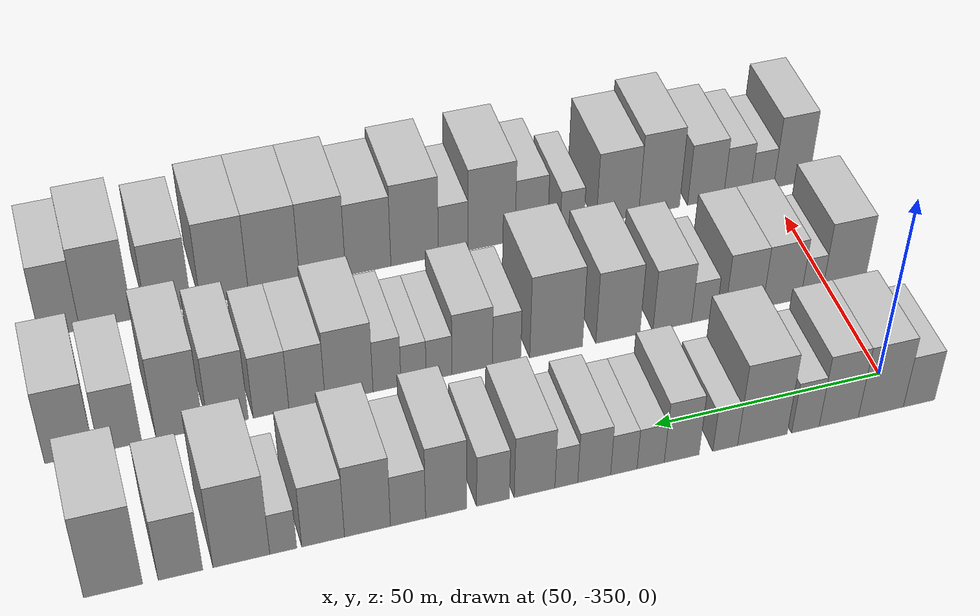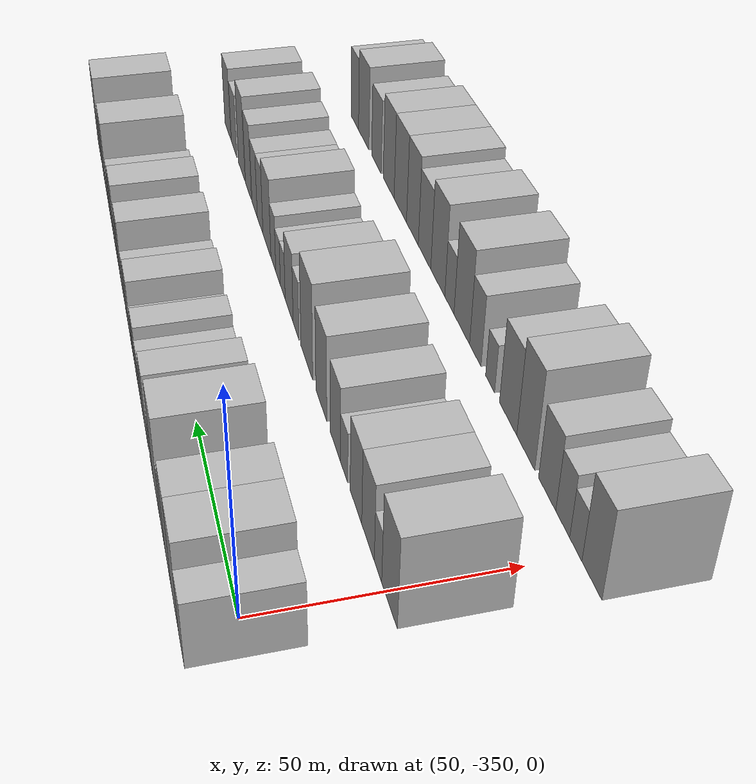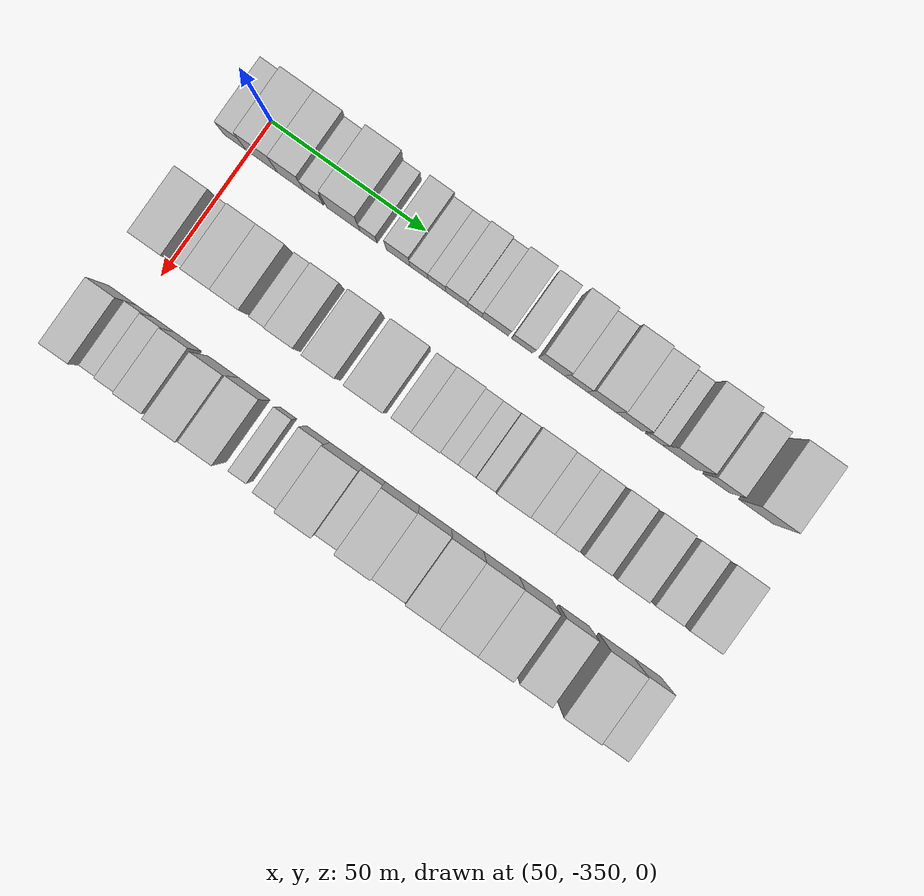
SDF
<sdf version="1.6">
 <world name="default">
  <model name="building_1">
   <static>1</static>
   <pose>50.0000 -354.4526 0 0.000000 0.000000 0.000000</pose>
   <link name="link">
    <pose>0 0 7.50 0 0 0</pose>
    <collision name="collision"><geometry><box><size>20.0000 7.0948 15.0000</size></box></geometry></collision>
    <visual name="visual">
     <cast_shadows>0</cast_shadows>
     <geometry><box><size>20.0000 7.0948 15.0000</size></box></geometry>
     <material>
      <script>
       <uri>model://HANNAS_wall/materials/scripts</uri>
       <uri>model://HANNAS_wall/materials/textures</uri>
       <name>vrc/HANNAS_wall</name>
      </script>
     </material>
    </visual>
   </link>
  </model>
  <model name="building_2">
   <static>1</static>
   <pose>50.0000 -345.8358 0 0.000000 0.000000 0.000000</pose>
   <link name="link">
    <pose>0 0 10.50 0 0 0</pose>
    <collision name="collision"><geometry><box><size>20.0000 10.1390 21.0000</size></box></geometry></collision>
    <visual name="visual">
     <cast_shadows>0</cast_shadows>
     <geometry><box><size>20.0000 10.1390 21.0000</size></box></geometry>
     <material>
      <script>
       <uri>model://HANNAS_wall/materials/scripts</uri>
       <uri>model://HANNAS_wall/materials/textures</uri>
       <name>vrc/HANNAS_wall</name>
      </script>
     </material>
    </visual>
   </link>
  </model>
  <model name="building_3">
   <static>1</static>
   <pose>50.0000 -336.3879 0 0.000000 0.000000 0.000000</pose>
   <link name="link">
    <pose>0 0 10.50 0 0 0</pose>
    <collision name="collision"><geometry><box><size>20.0000 8.7568 21.0000</size></box></geometry></collision>
    <visual name="visual">
     <cast_shadows>0</cast_shadows>
     <geometry><box><size>20.0000 8.7568 21.0000</size></box></geometry>
     <material>
      <script>
       <uri>model://HANNAS_wall/materials/scripts</uri>
       <uri>model://HANNAS_wall/materials/textures</uri>
       <name>vrc/HANNAS_wall</name>
      </script>
     </material>
    </visual>
   </link>
  </model>
  <model name="building_4">
   <static>1</static>
   <pose>50.0000 -328.9606 0 0.000000 0.000000 0.000000</pose>
   <link name="link">
    <pose>0 0 7.50 0 0 0</pose>
    <collision name="collision"><geometry><box><size>20.0000 6.0978 15.0000</size></box></geometry></collision>
    <visual name="visual">
     <cast_shadows>0</cast_shadows>
     <geometry><box><size>20.0000 6.0978 15.0000</size></box></geometry>
     <material>
      <script>
       <uri>model://HANNAS_wall/materials/scripts</uri>
       <uri>model://HANNAS_wall/materials/textures</uri>
       <name>vrc/HANNAS_wall</name>
      </script>
     </material>
    </visual>
   </link>
  </model>
  <model name="building_5">
   <static>1</static>
   <pose>50.0000 -319.4855 0 0.000000 0.000000 0.000000</pose>
   <link name="link">
    <pose>0 0 12.00 0 0 0</pose>
    <collision name="collision"><geometry><box><size>20.0000 10.8523 24.0000</size></box></geometry></collision>
    <visual name="visual">
     <cast_shadows>0</cast_shadows>
     <geometry><box><size>20.0000 10.8523 24.0000</size></box></geometry>
     <material>
      <script>
       <uri>model://HANNAS_wall/materials/scripts</uri>
       <uri>model://HANNAS_wall/materials/textures</uri>
       <name>vrc/HANNAS_wall</name>
      </script>
     </material>
    </visual>
   </link>
  </model>
  <model name="building_6">
   <static>1</static>
   <pose>50.0000 -311.3605 0 0.000000 0.000000 0.000000</pose>
   <link name="link">
    <pose>0 0 6.00 0 0 0</pose>
    <collision name="collision"><geometry><box><size>20.0000 5.3977 12.0000</size></box></geometry></collision>
    <visual name="visual">
     <cast_shadows>0</cast_shadows>
     <geometry><box><size>20.0000 5.3977 12.0000</size></box></geometry>
     <material>
      <script>
       <uri>model://HANNAS_wall/materials/scripts</uri>
       <uri>model://HANNAS_wall/materials/textures</uri>
       <name>vrc/HANNAS_wall</name>
      </script>
     </material>
    </visual>
   </link>
  </model>
  <model name="building_7">
   <static>1</static>
   <pose>50.0000 -301.9063 0 0.000000 0.000000 0.000000</pose>
   <link name="link">
    <pose>0 0 9.00 0 0 0</pose>
    <collision name="collision"><geometry><box><size>20.0000 7.5106 18.0000</size></box></geometry></collision>
    <visual name="visual">
     <cast_shadows>0</cast_shadows>
     <geometry><box><size>20.0000 7.5106 18.0000</size></box></geometry>
     <material>
      <script>
       <uri>model://HANNAS_wall/materials/scripts</uri>
       <uri>model://HANNAS_wall/materials/textures</uri>
       <name>vrc/HANNAS_wall</name>
      </script>
     </material>
    </visual>
   </link>
  </model>
  <model name="building_8">
   <static>1</static>
   <pose>50.0000 -295.2323 0 0.000000 0.000000 0.000000</pose>
   <link name="link">
    <pose>0 0 6.00 0 0 0</pose>
    <collision name="collision"><geometry><box><size>20.0000 5.8375 12.0000</size></box></geometry></collision>
    <visual name="visual">
     <cast_shadows>0</cast_shadows>
     <geometry><box><size>20.0000 5.8375 12.0000</size></box></geometry>
     <material>
      <script>
       <uri>model://HANNAS_wall/materials/scripts</uri>
       <uri>model://HANNAS_wall/materials/textures</uri>
       <name>vrc/HANNAS_wall</name>
      </script>
     </material>
    </visual>
   </link>
  </model>
  <model name="building_9">
   <static>1</static>
   <pose>50.0000 -289.4980 0 0.000000 0.000000 0.000000</pose>
   <link name="link">
    <pose>0 0 6.00 0 0 0</pose>
    <collision name="collision"><geometry><box><size>20.0000 5.6311 12.0000</size></box></geometry></collision>
    <visual name="visual">
     <cast_shadows>0</cast_shadows>
     <geometry><box><size>20.0000 5.6311 12.0000</size></box></geometry>
     <material>
      <script>
       <uri>model://HANNAS_wall/materials/scripts</uri>
       <uri>model://HANNAS_wall/materials/textures</uri>
       <name>vrc/HANNAS_wall</name>
      </script>
     </material>
    </visual>
   </link>
  </model>
  <model name="building_10">
   <static>1</static>
   <pose>50.0000 -283.2031 0 0.000000 0.000000 0.000000</pose>
   <link name="link">
    <pose>0 0 7.50 0 0 0</pose>
    <collision name="collision"><geometry><box><size>20.0000 6.9587 15.0000</size></box></geometry></collision>
    <visual name="visual">
     <cast_shadows>0</cast_shadows>
     <geometry><box><size>20.0000 6.9587 15.0000</size></box></geometry>
     <material>
      <script>
       <uri>model://HANNAS_wall/materials/scripts</uri>
       <uri>model://HANNAS_wall/materials/textures</uri>
       <name>vrc/HANNAS_wall</name>
      </script>
     </material>
    </visual>
   </link>
  </model>
  <model name="building_11">
   <static>1</static>
   <pose>50.0000 -277.3180 0 0.000000 0.000000 0.000000</pose>
   <link name="link">
    <pose>0 0 6.00 0 0 0</pose>
    <collision name="collision"><geometry><box><size>20.0000 4.8116 12.0000</size></box></geometry></collision>
    <visual name="visual">
     <cast_shadows>0</cast_shadows>
     <geometry><box><size>20.0000 4.8116 12.0000</size></box></geometry>
     <material>
      <script>
       <uri>model://HANNAS_wall/materials/scripts</uri>
       <uri>model://HANNAS_wall/materials/textures</uri>
       <name>vrc/HANNAS_wall</name>
      </script>
     </material>
    </visual>
   </link>
  </model>
  <model name="building_12">
   <static>1</static>
   <pose>50.0000 -270.6634 0 0.000000 0.000000 0.000000</pose>
   <link name="link">
    <pose>0 0 9.00 0 0 0</pose>
    <collision name="collision"><geometry><box><size>20.0000 8.4977 18.0000</size></box></geometry></collision>
    <visual name="visual">
     <cast_shadows>0</cast_shadows>
     <geometry><box><size>20.0000 8.4977 18.0000</size></box></geometry>
     <material>
      <script>
       <uri>model://HANNAS_wall/materials/scripts</uri>
       <uri>model://HANNAS_wall/materials/textures</uri>
       <name>vrc/HANNAS_wall</name>
      </script>
     </material>
    </visual>
   </link>
  </model>
  <model name="building_13">
   <static>1</static>
   <pose>50.0000 -262.0144 0 0.000000 0.000000 0.000000</pose>
   <link name="link">
    <pose>0 0 7.50 0 0 0</pose>
    <collision name="collision"><geometry><box><size>20.0000 6.8003 15.0000</size></box></geometry></collision>
    <visual name="visual">
     <cast_shadows>0</cast_shadows>
     <geometry><box><size>20.0000 6.8003 15.0000</size></box></geometry>
     <material>
      <script>
       <uri>model://HANNAS_wall/materials/scripts</uri>
       <uri>model://HANNAS_wall/materials/textures</uri>
       <name>vrc/HANNAS_wall</name>
      </script>
     </material>
    </visual>
   </link>
  </model>
  <model name="building_14">
   <static>1</static>
   <pose>50.0000 -252.3882 0 0.000000 0.000000 0.000000</pose>
   <link name="link">
    <pose>0 0 10.50 0 0 0</pose>
    <collision name="collision"><geometry><box><size>20.0000 8.4520 21.0000</size></box></geometry></collision>
    <visual name="visual">
     <cast_shadows>0</cast_shadows>
     <geometry><box><size>20.0000 8.4520 21.0000</size></box></geometry>
     <material>
      <script>
       <uri>model://HANNAS_wall/materials/scripts</uri>
       <uri>model://HANNAS_wall/materials/textures</uri>
       <name>vrc/HANNAS_wall</name>
      </script>
     </material>
    </visual>
   </link>
  </model>
  <model name="building_15">
   <static>1</static>
   <pose>50.0000 -244.5820 0 0.000000 0.000000 0.000000</pose>
   <link name="link">
    <pose>0 0 7.50 0 0 0</pose>
    <collision name="collision"><geometry><box><size>20.0000 7.1606 15.0000</size></box></geometry></collision>
    <visual name="visual">
     <cast_shadows>0</cast_shadows>
     <geometry><box><size>20.0000 7.1606 15.0000</size></box></geometry>
     <material>
      <script>
       <uri>model://HANNAS_wall/materials/scripts</uri>
       <uri>model://HANNAS_wall/materials/textures</uri>
       <name>vrc/HANNAS_wall</name>
      </script>
     </material>
    </visual>
   </link>
  </model>
  <model name="building_16">
   <static>1</static>
   <pose>50.0000 -236.3634 0 0.000000 0.000000 0.000000</pose>
   <link name="link">
    <pose>0 0 10.50 0 0 0</pose>
    <collision name="collision"><geometry><box><size>20.0000 9.2764 21.0000</size></box></geometry></collision>
    <visual name="visual">
     <cast_shadows>0</cast_shadows>
     <geometry><box><size>20.0000 9.2764 21.0000</size></box></geometry>
     <material>
      <script>
       <uri>model://HANNAS_wall/materials/scripts</uri>
       <uri>model://HANNAS_wall/materials/textures</uri>
       <name>vrc/HANNAS_wall</name>
      </script>
     </material>
    </visual>
   </link>
  </model>
  <model name="building_17">
   <static>1</static>
   <pose>50.0000 -227.4491 0 0.000000 0.000000 0.000000</pose>
   <link name="link">
    <pose>0 0 9.00 0 0 0</pose>
    <collision name="collision"><geometry><box><size>20.0000 8.5524 18.0000</size></box></geometry></collision>
    <visual name="visual">
     <cast_shadows>0</cast_shadows>
     <geometry><box><size>20.0000 8.5524 18.0000</size></box></geometry>
     <material>
      <script>
       <uri>model://HANNAS_wall/materials/scripts</uri>
       <uri>model://HANNAS_wall/materials/textures</uri>
       <name>vrc/HANNAS_wall</name>
      </script>
     </material>
    </visual>
   </link>
  </model>
  <model name="building_18">
   <static>1</static>
   <pose>50.0000 -219.5066 0 0.000000 0.000000 0.000000</pose>
   <link name="link">
    <pose>0 0 6.00 0 0 0</pose>
    <collision name="collision"><geometry><box><size>20.0000 5.3324 12.0000</size></box></geometry></collision>
    <visual name="visual">
     <cast_shadows>0</cast_shadows>
     <geometry><box><size>20.0000 5.3324 12.0000</size></box></geometry>
     <material>
      <script>
       <uri>model://HANNAS_wall/materials/scripts</uri>
       <uri>model://HANNAS_wall/materials/textures</uri>
       <name>vrc/HANNAS_wall</name>
      </script>
     </material>
    </visual>
   </link>
  </model>
  <model name="building_19">
   <static>1</static>
   <pose>50.0000 -211.2568 0 0.000000 0.000000 0.000000</pose>
   <link name="link">
    <pose>0 0 12.00 0 0 0</pose>
    <collision name="collision"><geometry><box><size>20.0000 11.1674 24.0000</size></box></geometry></collision>
    <visual name="visual">
     <cast_shadows>0</cast_shadows>
     <geometry><box><size>20.0000 11.1674 24.0000</size></box></geometry>
     <material>
      <script>
       <uri>model://HANNAS_wall/materials/scripts</uri>
       <uri>model://HANNAS_wall/materials/textures</uri>
       <name>vrc/HANNAS_wall</name>
      </script>
     </material>
    </visual>
   </link>
  </model>
  <model name="building_20">
   <static>1</static>
   <pose>50.0000 -199.3447 0 0.000000 0.000000 0.000000</pose>
   <link name="link">
    <pose>0 0 9.00 0 0 0</pose>
    <collision name="collision"><geometry><box><size>20.0000 8.6568 18.0000</size></box></geometry></collision>
    <visual name="visual">
     <cast_shadows>0</cast_shadows>
     <geometry><box><size>20.0000 8.6568 18.0000</size></box></geometry>
     <material>
      <script>
       <uri>model://HANNAS_wall/materials/scripts</uri>
       <uri>model://HANNAS_wall/materials/textures</uri>
       <name>vrc/HANNAS_wall</name>
      </script>
     </material>
    </visual>
   </link>
  </model>
  <model name="building_21">
   <static>1</static>
   <pose>50.0000 -186.3479 0 0.000000 0.000000 0.000000</pose>
   <link name="link">
    <pose>0 0 12.00 0 0 0</pose>
    <collision name="collision"><geometry><box><size>20.0000 11.3366 24.0000</size></box></geometry></collision>
    <visual name="visual">
     <cast_shadows>0</cast_shadows>
     <geometry><box><size>20.0000 11.3366 24.0000</size></box></geometry>
     <material>
      <script>
       <uri>model://HANNAS_wall/materials/scripts</uri>
       <uri>model://HANNAS_wall/materials/textures</uri>
       <name>vrc/HANNAS_wall</name>
      </script>
     </material>
    </visual>
   </link>
  </model>
  <model name="building_84">
   <static>1</static>
   <pose>85.0000 -352.9696 0 0.000000 0.000000 0.000000</pose>
   <link name="link">
    <pose>0 0 10.50 0 0 0</pose>
    <collision name="collision"><geometry><box><size>20.0000 10.0607 21.0000</size></box></geometry></collision>
    <visual name="visual">
     <cast_shadows>0</cast_shadows>
     <geometry><box><size>20.0000 10.0607 21.0000</size></box></geometry>
     <material>
      <script>
       <uri>model://HANNAS_wall/materials/scripts</uri>
       <uri>model://HANNAS_wall/materials/textures</uri>
       <name>vrc/HANNAS_wall</name>
      </script>
     </material>
    </visual>
   </link>
  </model>
  <model name="building_85">
   <static>1</static>
   <pose>85.0000 -345.4326 0 0.000000 0.000000 0.000000</pose>
   <link name="link">
    <pose>0 0 6.00 0 0 0</pose>
    <collision name="collision"><geometry><box><size>20.0000 5.0135 12.0000</size></box></geometry></collision>
    <visual name="visual">
     <cast_shadows>0</cast_shadows>
     <geometry><box><size>20.0000 5.0135 12.0000</size></box></geometry>
     <material>
      <script>
       <uri>model://HANNAS_wall/materials/scripts</uri>
       <uri>model://HANNAS_wall/materials/textures</uri>
       <name>vrc/HANNAS_wall</name>
      </script>
     </material>
    </visual>
   </link>
  </model>
  <model name="building_86">
   <static>1</static>
   <pose>85.0000 -338.4584 0 0.000000 0.000000 0.000000</pose>
   <link name="link">
    <pose>0 0 9.00 0 0 0</pose>
    <collision name="collision"><geometry><box><size>20.0000 8.9349 18.0000</size></box></geometry></collision>
    <visual name="visual">
     <cast_shadows>0</cast_shadows>
     <geometry><box><size>20.0000 8.9349 18.0000</size></box></geometry>
     <material>
      <script>
       <uri>model://HANNAS_wall/materials/scripts</uri>
       <uri>model://HANNAS_wall/materials/textures</uri>
       <name>vrc/HANNAS_wall</name>
      </script>
     </material>
    </visual>
   </link>
  </model>
  <model name="building_87">
   <static>1</static>
   <pose>85.0000 -329.5762 0 0.000000 0.000000 0.000000</pose>
   <link name="link">
    <pose>0 0 9.00 0 0 0</pose>
    <collision name="collision"><geometry><box><size>20.0000 8.8293 18.0000</size></box></geometry></collision>
    <visual name="visual">
     <cast_shadows>0</cast_shadows>
     <geometry><box><size>20.0000 8.8293 18.0000</size></box></geometry>
     <material>
      <script>
       <uri>model://HANNAS_wall/materials/scripts</uri>
       <uri>model://HANNAS_wall/materials/textures</uri>
       <name>vrc/HANNAS_wall</name>
      </script>
     </material>
    </visual>
   </link>
  </model>
  <model name="building_88">
   <static>1</static>
   <pose>85.0000 -320.2946 0 0.000000 0.000000 0.000000</pose>
   <link name="link">
    <pose>0 0 6.00 0 0 0</pose>
    <collision name="collision"><geometry><box><size>20.0000 5.7340 12.0000</size></box></geometry></collision>
    <visual name="visual">
     <cast_shadows>0</cast_shadows>
     <geometry><box><size>20.0000 5.7340 12.0000</size></box></geometry>
     <material>
      <script>
       <uri>model://HANNAS_wall/materials/scripts</uri>
       <uri>model://HANNAS_wall/materials/textures</uri>
       <name>vrc/HANNAS_wall</name>
      </script>
     </material>
    </visual>
   </link>
  </model>
  <model name="building_89">
   <static>1</static>
   <pose>85.0000 -313.0156 0 0.000000 0.000000 0.000000</pose>
   <link name="link">
    <pose>0 0 9.00 0 0 0</pose>
    <collision name="collision"><geometry><box><size>20.0000 8.8241 18.0000</size></box></geometry></collision>
    <visual name="visual">
     <cast_shadows>0</cast_shadows>
     <geometry><box><size>20.0000 8.8241 18.0000</size></box></geometry>
     <material>
      <script>
       <uri>model://HANNAS_wall/materials/scripts</uri>
       <uri>model://HANNAS_wall/materials/textures</uri>
       <name>vrc/HANNAS_wall</name>
      </script>
     </material>
    </visual>
   </link>
  </model>
  <model name="building_90">
   <static>1</static>
   <pose>85.0000 -300.6014 0 0.000000 0.000000 0.000000</pose>
   <link name="link">
    <pose>0 0 10.50 0 0 0</pose>
    <collision name="collision"><geometry><box><size>20.0000 10.0043 21.0000</size></box></geometry></collision>
    <visual name="visual">
     <cast_shadows>0</cast_shadows>
     <geometry><box><size>20.0000 10.0043 21.0000</size></box></geometry>
     <material>
      <script>
       <uri>model://HANNAS_wall/materials/scripts</uri>
       <uri>model://HANNAS_wall/materials/textures</uri>
       <name>vrc/HANNAS_wall</name>
      </script>
     </material>
    </visual>
   </link>
  </model>
  <model name="building_91">
   <static>1</static>
   <pose>85.0000 -286.6879 0 0.000000 0.000000 0.000000</pose>
   <link name="link">
    <pose>0 0 12.00 0 0 0</pose>
    <collision name="collision"><geometry><box><size>20.0000 11.8227 24.0000</size></box></geometry></collision>
    <visual name="visual">
     <cast_shadows>0</cast_shadows>
     <geometry><box><size>20.0000 11.8227 24.0000</size></box></geometry>
     <material>
      <script>
       <uri>model://HANNAS_wall/materials/scripts</uri>
       <uri>model://HANNAS_wall/materials/textures</uri>
       <name>vrc/HANNAS_wall</name>
      </script>
     </material>
    </visual>
   </link>
  </model>
  <model name="building_92">
   <static>1</static>
   <pose>85.0000 -275.6431 0 0.000000 0.000000 0.000000</pose>
   <link name="link">
    <pose>0 0 7.50 0 0 0</pose>
    <collision name="collision"><geometry><box><size>20.0000 6.2668 15.0000</size></box></geometry></collision>
    <visual name="visual">
     <cast_shadows>0</cast_shadows>
     <geometry><box><size>20.0000 6.2668 15.0000</size></box></geometry>
     <material>
      <script>
       <uri>model://HANNAS_wall/materials/scripts</uri>
       <uri>model://HANNAS_wall/materials/textures</uri>
       <name>vrc/HANNAS_wall</name>
      </script>
     </material>
    </visual>
   </link>
  </model>
  <model name="building_93">
   <static>1</static>
   <pose>85.0000 -268.0560 0 0.000000 0.000000 0.000000</pose>
   <link name="link">
    <pose>0 0 9.00 0 0 0</pose>
    <collision name="collision"><geometry><box><size>20.0000 8.9075 18.0000</size></box></geometry></collision>
    <visual name="visual">
     <cast_shadows>0</cast_shadows>
     <geometry><box><size>20.0000 8.9075 18.0000</size></box></geometry>
     <material>
      <script>
       <uri>model://HANNAS_wall/materials/scripts</uri>
       <uri>model://HANNAS_wall/materials/textures</uri>
       <name>vrc/HANNAS_wall</name>
      </script>
     </material>
    </visual>
   </link>
  </model>
  <model name="building_94">
   <static>1</static>
   <pose>85.0000 -260.8009 0 0.000000 0.000000 0.000000</pose>
   <link name="link">
    <pose>0 0 6.00 0 0 0</pose>
    <collision name="collision"><geometry><box><size>20.0000 5.6026 12.0000</size></box></geometry></collision>
    <visual name="visual">
     <cast_shadows>0</cast_shadows>
     <geometry><box><size>20.0000 5.6026 12.0000</size></box></geometry>
     <material>
      <script>
       <uri>model://HANNAS_wall/materials/scripts</uri>
       <uri>model://HANNAS_wall/materials/textures</uri>
       <name>vrc/HANNAS_wall</name>
      </script>
     </material>
    </visual>
   </link>
  </model>
  <model name="building_95">
   <static>1</static>
   <pose>85.0000 -255.2570 0 0.000000 0.000000 0.000000</pose>
   <link name="link">
    <pose>0 0 6.00 0 0 0</pose>
    <collision name="collision"><geometry><box><size>20.0000 5.4851 12.0000</size></box></geometry></collision>
    <visual name="visual">
     <cast_shadows>0</cast_shadows>
     <geometry><box><size>20.0000 5.4851 12.0000</size></box></geometry>
     <material>
      <script>
       <uri>model://HANNAS_wall/materials/scripts</uri>
       <uri>model://HANNAS_wall/materials/textures</uri>
       <name>vrc/HANNAS_wall</name>
      </script>
     </material>
    </visual>
   </link>
  </model>
  <model name="building_96">
   <static>1</static>
   <pose>85.0000 -249.4998 0 0.000000 0.000000 0.000000</pose>
   <link name="link">
    <pose>0 0 7.50 0 0 0</pose>
    <collision name="collision"><geometry><box><size>20.0000 6.0294 15.0000</size></box></geometry></collision>
    <visual name="visual">
     <cast_shadows>0</cast_shadows>
     <geometry><box><size>20.0000 6.0294 15.0000</size></box></geometry>
     <material>
      <script>
       <uri>model://HANNAS_wall/materials/scripts</uri>
       <uri>model://HANNAS_wall/materials/textures</uri>
       <name>vrc/HANNAS_wall</name>
      </script>
     </material>
    </visual>
   </link>
  </model>
  <model name="building_97">
   <static>1</static>
   <pose>85.0000 -241.3582 0 0.000000 0.000000 0.000000</pose>
   <link name="link">
    <pose>0 0 10.50 0 0 0</pose>
    <collision name="collision"><geometry><box><size>20.0000 10.2538 21.0000</size></box></geometry></collision>
    <visual name="visual">
     <cast_shadows>0</cast_shadows>
     <geometry><box><size>20.0000 10.2538 21.0000</size></box></geometry>
     <material>
      <script>
       <uri>model://HANNAS_wall/materials/scripts</uri>
       <uri>model://HANNAS_wall/materials/textures</uri>
       <name>vrc/HANNAS_wall</name>
      </script>
     </material>
    </visual>
   </link>
  </model>
  <model name="building_98">
   <static>1</static>
   <pose>85.0000 -232.3829 0 0.000000 0.000000 0.000000</pose>
   <link name="link">
    <pose>0 0 9.00 0 0 0</pose>
    <collision name="collision"><geometry><box><size>20.0000 7.6968 18.0000</size></box></geometry></collision>
    <visual name="visual">
     <cast_shadows>0</cast_shadows>
     <geometry><box><size>20.0000 7.6968 18.0000</size></box></geometry>
     <material>
      <script>
       <uri>model://HANNAS_wall/materials/scripts</uri>
       <uri>model://HANNAS_wall/materials/textures</uri>
       <name>vrc/HANNAS_wall</name>
      </script>
     </material>
    </visual>
   </link>
  </model>
  <model name="building_99">
   <static>1</static>
   <pose>85.0000 -224.7558 0 0.000000 0.000000 0.000000</pose>
   <link name="link">
    <pose>0 0 9.00 0 0 0</pose>
    <collision name="collision"><geometry><box><size>20.0000 7.5574 18.0000</size></box></geometry></collision>
    <visual name="visual">
     <cast_shadows>0</cast_shadows>
     <geometry><box><size>20.0000 7.5574 18.0000</size></box></geometry>
     <material>
      <script>
       <uri>model://HANNAS_wall/materials/scripts</uri>
       <uri>model://HANNAS_wall/materials/textures</uri>
       <name>vrc/HANNAS_wall</name>
      </script>
     </material>
    </visual>
   </link>
  </model>
  <model name="building_100">
   <static>1</static>
   <pose>85.0000 -215.7596 0 0.000000 0.000000 0.000000</pose>
   <link name="link">
    <pose>0 0 10.50 0 0 0</pose>
    <collision name="collision"><geometry><box><size>20.0000 8.4350 21.0000</size></box></geometry></collision>
    <visual name="visual">
     <cast_shadows>0</cast_shadows>
     <geometry><box><size>20.0000 8.4350 21.0000</size></box></geometry>
     <material>
      <script>
       <uri>model://HANNAS_wall/materials/scripts</uri>
       <uri>model://HANNAS_wall/materials/textures</uri>
       <name>vrc/HANNAS_wall</name>
      </script>
     </material>
    </visual>
   </link>
  </model>
  <model name="building_101">
   <static>1</static>
   <pose>85.0000 -205.6873 0 0.000000 0.000000 0.000000</pose>
   <link name="link">
    <pose>0 0 12.00 0 0 0</pose>
    <collision name="collision"><geometry><box><size>20.0000 9.7097 24.0000</size></box></geometry></collision>
    <visual name="visual">
     <cast_shadows>0</cast_shadows>
     <geometry><box><size>20.0000 9.7097 24.0000</size></box></geometry>
     <material>
      <script>
       <uri>model://HANNAS_wall/materials/scripts</uri>
       <uri>model://HANNAS_wall/materials/textures</uri>
       <name>vrc/HANNAS_wall</name>
      </script>
     </material>
    </visual>
   </link>
  </model>
  <model name="building_102">
   <static>1</static>
   <pose>85.0000 -193.4419 0 0.000000 0.000000 0.000000</pose>
   <link name="link">
    <pose>0 0 9.00 0 0 0</pose>
    <collision name="collision"><geometry><box><size>20.0000 8.7809 18.0000</size></box></geometry></collision>
    <visual name="visual">
     <cast_shadows>0</cast_shadows>
     <geometry><box><size>20.0000 8.7809 18.0000</size></box></geometry>
     <material>
      <script>
       <uri>model://HANNAS_wall/materials/scripts</uri>
       <uri>model://HANNAS_wall/materials/textures</uri>
       <name>vrc/HANNAS_wall</name>
      </script>
     </material>
    </visual>
   </link>
  </model>
  <model name="building_103">
   <static>1</static>
   <pose>85.0000 -183.0638 0 0.000000 0.000000 0.000000</pose>
   <link name="link">
    <pose>0 0 10.50 0 0 0</pose>
    <collision name="collision"><geometry><box><size>20.0000 9.9754 21.0000</size></box></geometry></collision>
    <visual name="visual">
     <cast_shadows>0</cast_shadows>
     <geometry><box><size>20.0000 9.9754 21.0000</size></box></geometry>
     <material>
      <script>
       <uri>model://HANNAS_wall/materials/scripts</uri>
       <uri>model://HANNAS_wall/materials/textures</uri>
       <name>vrc/HANNAS_wall</name>
      </script>
     </material>
    </visual>
   </link>
  </model>
  <model name="building_161">
   <static>1</static>
   <pose>120.0000 -355.5740 0 0.000000 0.000000 0.000000</pose>
   <link name="link">
    <pose>0 0 10.50 0 0 0</pose>
    <collision name="collision"><geometry><box><size>20.0000 8.8520 21.0000</size></box></geometry></collision>
    <visual name="visual">
     <cast_shadows>0</cast_shadows>
     <geometry><box><size>20.0000 8.8520 21.0000</size></box></geometry>
     <material>
      <script>
       <uri>model://HANNAS_wall/materials/scripts</uri>
       <uri>model://HANNAS_wall/materials/textures</uri>
       <name>vrc/HANNAS_wall</name>
      </script>
     </material>
    </visual>
   </link>
  </model>
  <model name="building_162">
   <static>1</static>
   <pose>120.0000 -348.3107 0 0.000000 0.000000 0.000000</pose>
   <link name="link">
    <pose>0 0 6.00 0 0 0</pose>
    <collision name="collision"><geometry><box><size>20.0000 5.6745 12.0000</size></box></geometry></collision>
    <visual name="visual">
     <cast_shadows>0</cast_shadows>
     <geometry><box><size>20.0000 5.6745 12.0000</size></box></geometry>
     <material>
      <script>
       <uri>model://HANNAS_wall/materials/scripts</uri>
       <uri>model://HANNAS_wall/materials/textures</uri>
       <name>vrc/HANNAS_wall</name>
      </script>
     </material>
    </visual>
   </link>
  </model>
  <model name="building_163">
   <static>1</static>
   <pose>120.0000 -342.1021 0 0.000000 0.000000 0.000000</pose>
   <link name="link">
    <pose>0 0 7.50 0 0 0</pose>
    <collision name="collision"><geometry><box><size>20.0000 6.7426 15.0000</size></box></geometry></collision>
    <visual name="visual">
     <cast_shadows>0</cast_shadows>
     <geometry><box><size>20.0000 6.7426 15.0000</size></box></geometry>
     <material>
      <script>
       <uri>model://HANNAS_wall/materials/scripts</uri>
       <uri>model://HANNAS_wall/materials/textures</uri>
       <name>vrc/HANNAS_wall</name>
      </script>
     </material>
    </visual>
   </link>
  </model>
  <model name="building_164">
   <static>1</static>
   <pose>120.0000 -334.3185 0 0.000000 0.000000 0.000000</pose>
   <link name="link">
    <pose>0 0 9.00 0 0 0</pose>
    <collision name="collision"><geometry><box><size>20.0000 8.8245 18.0000</size></box></geometry></collision>
    <visual name="visual">
     <cast_shadows>0</cast_shadows>
     <geometry><box><size>20.0000 8.8245 18.0000</size></box></geometry>
     <material>
      <script>
       <uri>model://HANNAS_wall/materials/scripts</uri>
       <uri>model://HANNAS_wall/materials/textures</uri>
       <name>vrc/HANNAS_wall</name>
      </script>
     </material>
    </visual>
   </link>
  </model>
  <model name="building_165">
   <static>1</static>
   <pose>120.0000 -322.9390 0 0.000000 0.000000 0.000000</pose>
   <link name="link">
    <pose>0 0 12.00 0 0 0</pose>
    <collision name="collision"><geometry><box><size>20.0000 9.9346 24.0000</size></box></geometry></collision>
    <visual name="visual">
     <cast_shadows>0</cast_shadows>
     <geometry><box><size>20.0000 9.9346 24.0000</size></box></geometry>
     <material>
      <script>
       <uri>model://HANNAS_wall/materials/scripts</uri>
       <uri>model://HANNAS_wall/materials/textures</uri>
       <name>vrc/HANNAS_wall</name>
      </script>
     </material>
    </visual>
   </link>
  </model>
  <model name="building_166">
   <static>1</static>
   <pose>120.0000 -312.8669 0 0.000000 0.000000 0.000000</pose>
   <link name="link">
    <pose>0 0 10.50 0 0 0</pose>
    <collision name="collision"><geometry><box><size>20.0000 10.2096 21.0000</size></box></geometry></collision>
    <visual name="visual">
     <cast_shadows>0</cast_shadows>
     <geometry><box><size>20.0000 10.2096 21.0000</size></box></geometry>
     <material>
      <script>
       <uri>model://HANNAS_wall/materials/scripts</uri>
       <uri>model://HANNAS_wall/materials/textures</uri>
       <name>vrc/HANNAS_wall</name>
      </script>
     </material>
    </visual>
   </link>
  </model>
  <model name="building_167">
   <static>1</static>
   <pose>120.0000 -301.9362 0 0.000000 0.000000 0.000000</pose>
   <link name="link">
    <pose>0 0 6.00 0 0 0</pose>
    <collision name="collision"><geometry><box><size>20.0000 5.6518 12.0000</size></box></geometry></collision>
    <visual name="visual">
     <cast_shadows>0</cast_shadows>
     <geometry><box><size>20.0000 5.6518 12.0000</size></box></geometry>
     <material>
      <script>
       <uri>model://HANNAS_wall/materials/scripts</uri>
       <uri>model://HANNAS_wall/materials/textures</uri>
       <name>vrc/HANNAS_wall</name>
      </script>
     </material>
    </visual>
   </link>
  </model>
  <model name="building_168">
   <static>1</static>
   <pose>120.0000 -292.2878 0 0.000000 0.000000 0.000000</pose>
   <link name="link">
    <pose>0 0 9.00 0 0 0</pose>
    <collision name="collision"><geometry><box><size>20.0000 7.6451 18.0000</size></box></geometry></collision>
    <visual name="visual">
     <cast_shadows>0</cast_shadows>
     <geometry><box><size>20.0000 7.6451 18.0000</size></box></geometry>
     <material>
      <script>
       <uri>model://HANNAS_wall/materials/scripts</uri>
       <uri>model://HANNAS_wall/materials/textures</uri>
       <name>vrc/HANNAS_wall</name>
      </script>
     </material>
    </visual>
   </link>
  </model>
  <model name="building_169">
   <static>1</static>
   <pose>120.0000 -282.9380 0 0.000000 0.000000 0.000000</pose>
   <link name="link">
    <pose>0 0 12.00 0 0 0</pose>
    <collision name="collision"><geometry><box><size>20.0000 11.0545 24.0000</size></box></geometry></collision>
    <visual name="visual">
     <cast_shadows>0</cast_shadows>
     <geometry><box><size>20.0000 11.0545 24.0000</size></box></geometry>
     <material>
      <script>
       <uri>model://HANNAS_wall/materials/scripts</uri>
       <uri>model://HANNAS_wall/materials/textures</uri>
       <name>vrc/HANNAS_wall</name>
      </script>
     </material>
    </visual>
   </link>
  </model>
  <model name="building_170">
   <static>1</static>
   <pose>120.0000 -273.9911 0 0.000000 0.000000 0.000000</pose>
   <link name="link">
    <pose>0 0 7.50 0 0 0</pose>
    <collision name="collision"><geometry><box><size>20.0000 6.8393 15.0000</size></box></geometry></collision>
    <visual name="visual">
     <cast_shadows>0</cast_shadows>
     <geometry><box><size>20.0000 6.8393 15.0000</size></box></geometry>
     <material>
      <script>
       <uri>model://HANNAS_wall/materials/scripts</uri>
       <uri>model://HANNAS_wall/materials/textures</uri>
       <name>vrc/HANNAS_wall</name>
      </script>
     </material>
    </visual>
   </link>
  </model>
  <model name="building_171">
   <static>1</static>
   <pose>120.0000 -265.0798 0 0.000000 0.000000 0.000000</pose>
   <link name="link">
    <pose>0 0 12.00 0 0 0</pose>
    <collision name="collision"><geometry><box><size>20.0000 10.9833 24.0000</size></box></geometry></collision>
    <visual name="visual">
     <cast_shadows>0</cast_shadows>
     <geometry><box><size>20.0000 10.9833 24.0000</size></box></geometry>
     <material>
      <script>
       <uri>model://HANNAS_wall/materials/scripts</uri>
       <uri>model://HANNAS_wall/materials/textures</uri>
       <name>vrc/HANNAS_wall</name>
      </script>
     </material>
    </visual>
   </link>
  </model>
  <model name="building_172">
   <static>1</static>
   <pose>120.0000 -254.4104 0 0.000000 0.000000 0.000000</pose>
   <link name="link">
    <pose>0 0 10.50 0 0 0</pose>
    <collision name="collision"><geometry><box><size>20.0000 10.3554 21.0000</size></box></geometry></collision>
    <visual name="visual">
     <cast_shadows>0</cast_shadows>
     <geometry><box><size>20.0000 10.3554 21.0000</size></box></geometry>
     <material>
      <script>
       <uri>model://HANNAS_wall/materials/scripts</uri>
       <uri>model://HANNAS_wall/materials/textures</uri>
       <name>vrc/HANNAS_wall</name>
      </script>
     </material>
    </visual>
   </link>
  </model>
  <model name="building_173">
   <static>1</static>
   <pose>120.0000 -244.0670 0 0.000000 0.000000 0.000000</pose>
   <link name="link">
    <pose>0 0 12.00 0 0 0</pose>
    <collision name="collision"><geometry><box><size>20.0000 10.3314 24.0000</size></box></geometry></collision>
    <visual name="visual">
     <cast_shadows>0</cast_shadows>
     <geometry><box><size>20.0000 10.3314 24.0000</size></box></geometry>
     <material>
      <script>
       <uri>model://HANNAS_wall/materials/scripts</uri>
       <uri>model://HANNAS_wall/materials/textures</uri>
       <name>vrc/HANNAS_wall</name>
      </script>
     </material>
    </visual>
   </link>
  </model>
  <model name="building_174">
   <static>1</static>
   <pose>120.0000 -233.1542 0 0.000000 0.000000 0.000000</pose>
   <link name="link">
    <pose>0 0 12.00 0 0 0</pose>
    <collision name="collision"><geometry><box><size>20.0000 11.4943 24.0000</size></box></geometry></collision>
    <visual name="visual">
     <cast_shadows>0</cast_shadows>
     <geometry><box><size>20.0000 11.4943 24.0000</size></box></geometry>
     <material>
      <script>
       <uri>model://HANNAS_wall/materials/scripts</uri>
       <uri>model://HANNAS_wall/materials/textures</uri>
       <name>vrc/HANNAS_wall</name>
      </script>
     </material>
    </visual>
   </link>
  </model>
  <model name="building_175">
   <static>1</static>
   <pose>120.0000 -222.0507 0 0.000000 0.000000 0.000000</pose>
   <link name="link">
    <pose>0 0 12.00 0 0 0</pose>
    <collision name="collision"><geometry><box><size>20.0000 10.7125 24.0000</size></box></geometry></collision>
    <visual name="visual">
     <cast_shadows>0</cast_shadows>
     <geometry><box><size>20.0000 10.7125 24.0000</size></box></geometry>
     <material>
      <script>
       <uri>model://HANNAS_wall/materials/scripts</uri>
       <uri>model://HANNAS_wall/materials/textures</uri>
       <name>vrc/HANNAS_wall</name>
      </script>
     </material>
    </visual>
   </link>
  </model>
  <model name="building_176">
   <static>1</static>
   <pose>120.0000 -209.7236 0 0.000000 0.000000 0.000000</pose>
   <link name="link">
    <pose>0 0 10.50 0 0 0</pose>
    <collision name="collision"><geometry><box><size>20.0000 9.9417 21.0000</size></box></geometry></collision>
    <visual name="visual">
     <cast_shadows>0</cast_shadows>
     <geometry><box><size>20.0000 9.9417 21.0000</size></box></geometry>
     <material>
      <script>
       <uri>model://HANNAS_wall/materials/scripts</uri>
       <uri>model://HANNAS_wall/materials/textures</uri>
       <name>vrc/HANNAS_wall</name>
      </script>
     </material>
    </visual>
   </link>
  </model>
  <model name="building_177">
   <static>1</static>
   <pose>120.0000 -196.0671 0 0.000000 0.000000 0.000000</pose>
   <link name="link">
    <pose>0 0 12.00 0 0 0</pose>
    <collision name="collision"><geometry><box><size>20.0000 11.3712 24.0000</size></box></geometry></collision>
    <visual name="visual">
     <cast_shadows>0</cast_shadows>
     <geometry><box><size>20.0000 11.3712 24.0000</size></box></geometry>
     <material>
      <script>
       <uri>model://HANNAS_wall/materials/scripts</uri>
       <uri>model://HANNAS_wall/materials/textures</uri>
       <name>vrc/HANNAS_wall</name>
      </script>
     </material>
    </visual>
   </link>
  </model>
  <model name="building_178">
   <static>1</static>
   <pose>120.0000 -186.0517 0 0.000000 0.000000 0.000000</pose>
   <link name="link">
    <pose>0 0 10.50 0 0 0</pose>
    <collision name="collision"><geometry><box><size>20.0000 8.6597 21.0000</size></box></geometry></collision>
    <visual name="visual">
     <cast_shadows>0</cast_shadows>
     <geometry><box><size>20.0000 8.6597 21.0000</size></box></geometry>
     <material>
      <script>
       <uri>model://HANNAS_wall/materials/scripts</uri>
       <uri>model://HANNAS_wall/materials/textures</uri>
       <name>vrc/HANNAS_wall</name>
      </script>
     </material>
    </visual>
   </link>
  </model>
 </world>
</sdf>
